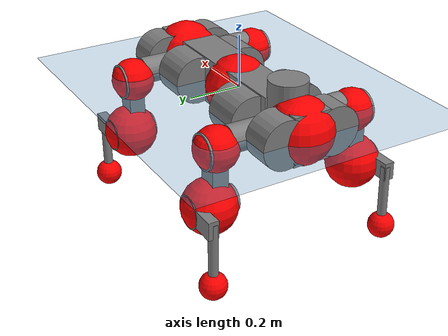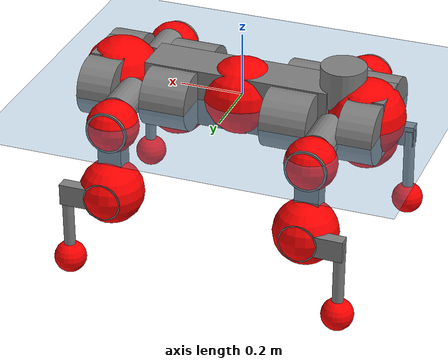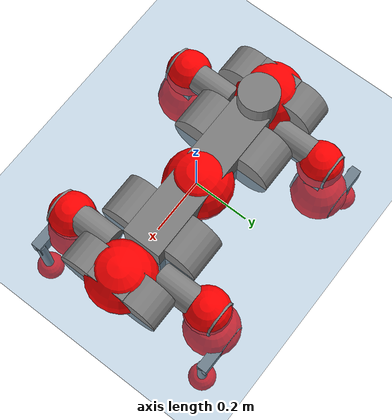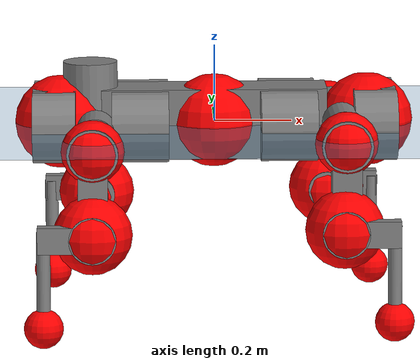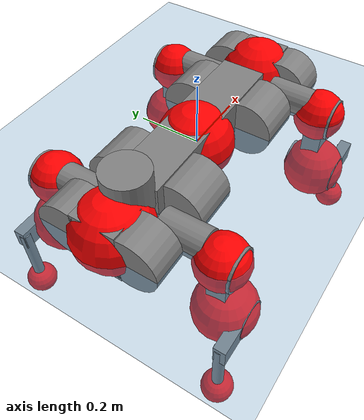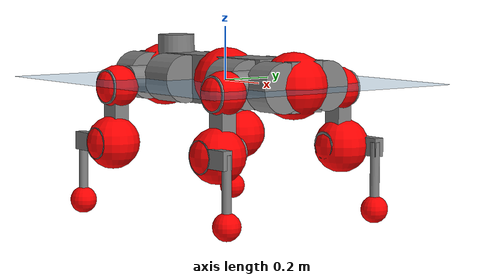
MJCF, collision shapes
<mujoco model="anymal_c">
  <compiler angle="radian" assetdir="assets" balanceinertia="true" inertiafromgeom="false"/>

  <option timestep="0.005" density="1.2" viscosity="2e-05"/>

  <size nkey="1"/>

  <visual>
    <quality shadowsize="8192"/>
    <map shadowclip="0.5"/>
  </visual>

  <default>
    <default class="/">
      <material specular="0" shininess="0.25"/>
      <geom contype="0" conaffinity="0" group="1" solref="-1000 -80"/>
      <site size="0.01 0.005 0.005" group="5"/>
      <general forcelimited="true" forcerange="-80 80" biastype="affine" gainprm="80" biasprm="0 -80 -2"/>
      <default class="anymal_c">
        <joint armature="0.01" damping="0.01" frictionloss="0.1"/>
        <default class="visual">
          <geom type="mesh" group="2"/>
          <default class="visual_zflip"/>
        </default>
        <default class="collision">
          <geom type="cylinder" group="3"/>
          <default class="foot">
            <geom size="0.03 0 0" type="sphere" condim="6" priority="1" friction="0.8 0.02 0.01" solimp="0.015 1 0.03"/>
          </default>
        </default>
      </default>
      <default class="reward_collision_sphere">
        <geom group="5" rgba="1 0 0 1"/>
      </default>
    </default>
  </default>

  <asset>
    <texture type="skybox" colorspace="auto" name="//unnamed_texture_0" builtin="gradient" rgb1="0.95 0.95 0.95" rgb2="0.95 0.95 0.95" width="100" height="600"/>
    <texture type="2d" colorspace="auto" name="texplane" builtin="checker" rgb1="0.345 0.575 0.748" rgb2="0.345 0.575 0.748" markrgb="1 1 1" width="512" height="512"/>
    <texture type="2d" colorspace="linear" name="base" file="base.png"/>
    <texture type="2d" colorspace="linear" name="top_shell" file="top_shell.png"/>
    <texture type="2d" colorspace="linear" name="bottom_shell" file="bottom_shell.png"/>
    <texture type="2d" colorspace="linear" name="remote" file="remote.png"/>
    <texture type="2d" colorspace="linear" name="hatch" file="hatch.png"/>
    <texture type="2d" colorspace="linear" name="handle" file="handle.png"/>
    <texture type="2d" colorspace="linear" name="face" file="face.png"/>
    <texture type="2d" colorspace="linear" name="battery" file="battery.png"/>
    <texture type="2d" colorspace="linear" name="lidar_cage" file="lidar_cage.png"/>
    <texture type="2d" colorspace="linear" name="depth_camera" file="depth_camera.png"/>
    <texture type="2d" colorspace="linear" name="wide_angle_camera" file="wide_angle_camera.png"/>
    <texture type="2d" colorspace="linear" name="lidar" file="lidar.png"/>
    <texture type="2d" colorspace="linear" name="drive" file="drive.png"/>
    <texture type="2d" colorspace="linear" name="hip_l" file="hip_l.png"/>
    <texture type="2d" colorspace="linear" name="shank_l" file="shank_l.png"/>
    <texture type="2d" colorspace="linear" name="foot" file="foot.png"/>
    <texture type="2d" colorspace="linear" name="thigh" file="thigh.png"/>
    <texture type="2d" colorspace="linear" name="shank_r" file="shank_r.png"/>
    <texture type="2d" colorspace="linear" name="hip_r" file="hip_r.png"/>
    <material name="MatPlane" class="/" texture="texplane" texuniform="true" texrepeat="2 2" specular="0.9" shininess="0.5"/>
    <material name="black_plastic" class="/" rgba="0.007 0.007 0.007 1"/>
    <material name="green" class="/" rgba="0.052 0.178 0.033 1"/>
    <material name="red" class="/" rgba="0.178 0.006 0.005 1"/>
    <material name="yellow" class="/" rgba="0.178 0.119 0.006 1"/>
    <material name="lwl" class="/" rgba="0.8 0.8 0.8 1"/>
    <material name="base" class="/" texture="base"/>
    <material name="top_shell" class="/" texture="top_shell"/>
    <material name="bottom_shell" class="/" texture="bottom_shell"/>
    <material name="hip_l" class="/" texture="hip_l"/>
    <material name="thigh" class="/" texture="thigh"/>
    <material name="shank_l" class="/" texture="shank_l"/>
    <material name="foot" class="/" texture="foot"/>
    <material name="hip_r" class="/" texture="hip_r"/>
    <material name="shank" class="/" texture="shank_r"/>
    <material name="hatch" class="/" texture="hatch"/>
    <material name="remote" class="/" texture="remote"/>
    <material name="handle" class="/" texture="handle"/>
    <material name="face" class="/" texture="face"/>
    <material name="depth_camera" class="/" texture="depth_camera"/>
    <material name="wide_angle_camera" class="/" texture="wide_angle_camera"/>
    <material name="battery" class="/" texture="battery"/>
    <material name="lidar_cage" class="/" texture="lidar_cage"/>
    <material name="lidar" class="/" texture="lidar"/>
    <material name="drive" class="/" texture="drive"/>
    <mesh name="base_0" class="/" file="base_0.obj"/>
    <mesh name="base_1" class="/" file="base_1.obj"/>
    <mesh name="base_2" class="/" file="base_2.obj"/>
    <mesh name="base_3" class="/" file="base_3.obj"/>
    <mesh name="base_4" class="/" file="base_4.obj"/>
    <mesh name="base_5" class="/" file="base_5.obj"/>
    <mesh name="top_shell" class="/" file="top_shell.obj"/>
    <mesh name="bottom_shell" class="/" file="bottom_shell.obj"/>
    <mesh name="remote" class="/" file="remote.obj"/>
    <mesh name="handle" class="/" file="handle.obj"/>
    <mesh name="face" class="/" file="face.obj"/>
    <mesh name="wide_angle_camera" class="/" file="wide_angle_camera.obj"/>
    <mesh name="depth_camera" class="/" file="depth_camera.obj"/>
    <mesh name="battery" class="/" file="battery.obj"/>
    <mesh name="lidar_cage" class="/" file="lidar_cage.obj"/>
    <mesh name="lidar" class="/" file="lidar.obj"/>
    <mesh name="drive" class="/" file="drive.obj"/>
    <mesh name="hip_l" class="/" file="hip_l.obj"/>
    <mesh name="thigh" class="/" file="thigh.obj"/>
    <mesh name="shank_l" class="/" file="shank_l.obj"/>
    <mesh name="foot" class="/" file="foot.obj"/>
    <mesh name="hip_r" class="/" file="hip_r.obj"/>
    <mesh name="hatch" class="/" file="hatch.obj"/>
    <mesh name="shank_r" class="/" file="shank_r.obj"/>
  </asset>

  <worldbody>
    <geom name="floor" class="/" size="100 100 0.125" type="plane" group="0" material="MatPlane"/>
    <light name="toplight_shadow" class="/" pos="0 0 5" dir="0.0990148 0.0990148 -0.990148" type="directional" ambient="0.04 0.04 0.04" diffuse="0.55 0.55 0.55" specular="0.12 0.12 0.12"/>
    <light name="toplight_fill" class="/" pos="0 0 5" dir="0.0990148 0.0990148 -0.990148" type="directional" castshadow="false" ambient="0.04 0.04 0.04" diffuse="0.3 0.3 0.3" specular="0.08 0.08 0.08"/>
    <body name="trunk" childclass="anymal_c" pos="-0.00165617 0.00580523 0.00149227" quat="0.999996 8.70056e-05 -0.00279027 0.000898659">
      <inertial pos="0.00663288 0.0106849 0.0287057" quat="0.498883 0.514785 0.483549 0.502287" mass="20.1793" diaginertia="0.435014 3.70622 0.0453125"/>
      <joint name="//unnamed_joint_0" type="free" armature="0" damping="0" frictionloss="0"/>
      <geom name="//unnamed_geom_1" class="visual" material="green" mesh="base_0"/>
      <geom name="//unnamed_geom_2" class="visual" material="yellow" mesh="base_1"/>
      <geom name="//unnamed_geom_3" class="visual" material="red" mesh="base_2"/>
      <geom name="//unnamed_geom_4" class="visual" material="black_plastic" mesh="base_3"/>
      <geom name="//unnamed_geom_5" class="visual" material="lwl" mesh="base_4"/>
      <geom name="//unnamed_geom_6" class="visual" material="base" mesh="base_5"/>
      <geom name="trunk_1" class="collision" size="0.291851 0.0704469 0.0905745" type="box"/>
      <geom name="trunk_2" class="collision" size="0.0905745 0.0729628" pos="0.191626 0.0987219 0" quat="0.707107 0 0.707107 0"/>
      <geom name="trunk_3" class="collision" size="0.0905745 0.0729628" pos="-0.191626 0.0987219 0" quat="0.707107 0 0.707107 0"/>
      <geom name="trunk_4" class="collision" size="0.0905745 0.0729628" pos="0.191626 -0.0987219 0" quat="0.707107 0 0.707107 0"/>
      <geom name="trunk_5" class="collision" size="0.0905745 0.0729628" pos="-0.191626 -0.0987219 0" quat="0.707107 0 0.707107 0"/>
      <geom name="//unnamed_geom_12" class="visual" material="top_shell" mesh="top_shell"/>
      <geom name="//unnamed_geom_13" class="visual" material="bottom_shell" mesh="bottom_shell"/>
      <geom name="//unnamed_geom_14" class="visual" material="remote" mesh="remote"/>
      <geom name="//unnamed_geom_15" class="visual" material="handle" mesh="handle"/>
      <geom name="//unnamed_geom_16" class="visual" pos="0.365191 0 0" quat="1 0 0 0" material="face" mesh="face"/>
      <geom name="trunk_6" class="collision" size="0.0553511 0.0704469 0.0905745" pos="0.413648 0 0" type="box"/>
      <geom name="//unnamed_geom_18" class="collision" size="0.0905745 0.0553511" pos="0.413648 0.0987219 0" quat="0.707107 0 0.707107 0"/>
      <geom name="//unnamed_geom_19" class="collision" size="0.0905745 0.0553511" pos="0.413648 -0.0987219 0" quat="0.707107 0 0.707107 0"/>
      <geom name="//unnamed_geom_20" class="visual" pos="0.406726 0 -0.0200871" quat="0.965926 0 0.258819 0" material="depth_camera" mesh="depth_camera"/>
      <geom name="//unnamed_geom_21" class="visual" pos="0.451973 0 0.0108951" material="wide_angle_camera" mesh="wide_angle_camera"/>
      <geom name="//unnamed_geom_22" class="visual_zflip" pos="-0.365191 0 0" quat="0 0 0 1" material="face" mesh="face"/>
      <geom name="trunk_7" class="collision" size="0.0553511 0.0704469 0.0905745" pos="-0.413648 0 0" quat="0 0 0 1" type="box"/>
      <geom name="//unnamed_geom_24" class="collision" size="0.0905745 0.0553511" pos="-0.413648 -0.0987219 0" quat="0 -0.707107 0 0.707107"/>
      <geom name="//unnamed_geom_25" class="collision" size="0.0905745 0.0553511" pos="-0.413648 0.0987219 0" quat="0 -0.707107 0 0.707107"/>
      <geom name="//unnamed_geom_26" class="visual" pos="-0.406726 0 -0.0200871" quat="0 -0.258819 0 0.965926" material="depth_camera" mesh="depth_camera"/>
      <geom name="//unnamed_geom_27" class="visual_zflip" pos="-0.451973 0 0.0108951" quat="0 0 0 1" material="wide_angle_camera" mesh="wide_angle_camera"/>
      <geom name="//unnamed_geom_28" class="visual" material="battery" mesh="battery"/>
      <geom name="//unnamed_geom_29" class="visual" pos="0 0.114771 0.0223072" quat="0.683013 -0.183013 0.183013 0.683013" material="depth_camera" mesh="depth_camera"/>
      <geom name="//unnamed_geom_30" class="visual" pos="0 -0.114771 0.0223072" quat="0.683013 0.183013 0.183013 -0.683013" material="depth_camera" mesh="depth_camera"/>
      <geom name="//unnamed_geom_31" class="visual" pos="-0.320698 0 0.0534932" quat="1 0 0 0" material="lidar_cage" mesh="lidar_cage"/>
      <geom name="trunk_8" class="collision" size="0.0704469 0.060383" pos="-0.320698 0 0.0971611"/>
      <geom name="//unnamed_geom_33" class="visual" pos="-0.320698 0.000207938 0.103493" quat="0.707107 0 0 -0.707107" material="lidar" mesh="lidar"/>
      <geom name="//unnamed_geom_34" class="visual" pos="0.264224 0.14643 1.17735e-08" quat="0.258819 0.965926 0 0" material="drive" mesh="drive"/>
      <geom name="//unnamed_geom_35" class="visual" pos="0.264224 -0.14643 -1.17735e-08" quat="0.258819 -0.965926 0 0" material="drive" mesh="drive"/>
      <geom name="//unnamed_geom_36" class="visual" pos="-0.264224 0.14643 -1.17735e-08" quat="0 0 0.965926 -0.258819" material="drive" mesh="drive"/>
      <geom name="//unnamed_geom_37" class="visual" pos="-0.264224 -0.14643 1.17735e-08" quat="0 0 -0.965926 -0.258819" material="drive" mesh="drive"/>
      <geom name="//unnamed_geom_38" class="visual" pos="0.102201 0 0.0531293" quat="1 0 0 0" material="hatch" mesh="hatch"/>
      <geom name="//unnamed_geom_39" class="reward_collision_sphere" size="0.120766"/>
      <geom name="//unnamed_geom_40" class="reward_collision_sphere" size="0.120766" pos="0.396468 0 0"/>
      <geom name="//unnamed_geom_41" class="reward_collision_sphere" size="0.120766" pos="-0.396468 0 0"/>
      <site name="imu" pos="0.213026 0.020059 0.0419977" size="0.0100638"/>
      <camera name="track" pos="0 -2.82063 0" quat="0.707107 0.707107 0 0" mode="trackcom"/>
      <camera name="ego_camera" pos="0.396468 0 -0.0291119" quat="-0.5 -0.5 0.5 0.5"/>
      <body name="LF_HIP" pos="0.265895 0.147189 -0.000626905" quat="0.259302 0.965796 0.000257533 -0.000919898">
        <inertial pos="0.0498022 -0.0135966 -0.00471521" quat="-0.0851522 0.740089 -0.117586 0.656651" mass="2.89113" diaginertia="0.00304182 0.0285464 0.000656307"/>
        <joint name="LF_HAA" pos="0 0 0" axis="0.999958 -0.00833976 -0.00376222" range="-0.637203 0.480452" armature="0.00973519" damping="0.0208116" frictionloss="0.0931167"/>
        <geom name="//unnamed_geom_42" class="visual" pos="0 0.000692579 -0.000113756" quat="0.258819 -0.965926 0 0" material="hip_l" mesh="hip_l"/>
        <geom name="//unnamed_geom_43" class="visual" pos="0.0527743 -0.0706735 -0.0357551" quat="0.183013 -0.683013 0.683013 0.183013" material="drive" mesh="drive"/>
        <geom name="//unnamed_geom_44" class="collision" size="0.0503192 0.0704469" pos="0.0527743 -0.0168671 -0.00502545" quat="-0.353553 -0.612372 0.612372 -0.353553"/>
        <body name="LF_THIGH" pos="0.0450037 -0.1066 -0.0313589" quat="0.185372 -0.685324 0.681132 0.178964">
          <inertial pos="0.025777 -0.0110863 -0.179168" quat="0.993421 0.000140962 -0.0872327 0.0742022" mass="3.02007" diaginertia="0.0181455 0.147302 0.000875365"/>
          <joint name="LF_HFE" pos="0 0 0" axis="0.999533 0.0295694 0.00772812" range="-3.02004 3.33395" armature="0.00465383" damping="0.0146779" frictionloss="0.123168"/>
          <geom name="//unnamed_geom_45" class="visual" pos="-0.0105305 -1.65936e-05 0" quat="0.707107 0 0 -0.707107" material="thigh" mesh="thigh"/>
          <geom name="//unnamed_geom_46" class="collision" size="0.0654149 0.0402554" pos="0.0352416 0 0" quat="0.5 0.5 -0.5 -0.5"/>
          <geom name="//unnamed_geom_47" class="collision" size="0.0377394 0.0301915 0.142216" pos="0.0264312 0 -0.102848" quat="0.707107 0 0 -0.707107" type="box"/>
          <geom name="//unnamed_geom_48" class="visual" pos="0.0883683 0 -0.207423" quat="1 0 0 0" material="drive" mesh="drive"/>
          <geom name="//unnamed_geom_49" class="collision" size="0.0503192 0.0704469" pos="0.0266955 0 -0.207423" quat="0.707107 0 0.707107 0"/>
          <geom name="//unnamed_geom_50" class="reward_collision_sphere" size="0.0805107" pos="0.022026 0 0"/>
          <body name="LF_SHANK" pos="0.0880977 -0.000660157 -0.211745" quat="1 0.000362686 -0.00080059 0.000310147">
            <inertial pos="0.0137307 -0.0810665 -0.0511119" quat="0.993878 -0.109008 -0.00285196 -0.0177453" mass="0.624548" diaginertia="0.00574531 0.0483468 0.000240027"/>
            <joint name="LF_KFE" pos="0 0 0" axis="0.999948 0.00524977 -0.00870067" range="-3.36451 2.99093" armature="0.0124847" damping="0.049286" frictionloss="0.091954"/>
            <geom name="//unnamed_geom_51" class="visual" pos="-0.00343376 -0.018309 0" quat="0.707107 0 0 -0.707107" material="shank_l" mesh="shank_l"/>
            <geom name="LF_kfe_act" class="collision" size="0.060383 0.0201277" pos="0.0176208 0 0" quat="0.5 0.5 -0.5 -0.5"/>
            <geom name="//unnamed_geom_53" class="collision" size="0.0578661 0.0339655 0.0191213" pos="0.0176208 -0.0810916 0" quat="0.5 0.5 -0.5 -0.5" type="box"/>
            <geom name="//unnamed_geom_54" class="visual" pos="0.0114984 -0.129937 -0.245974" quat="0.382683 0 0 -0.92388" material="foot" mesh="foot"/>
            <geom name="LF_calf" class="collision" size="0.0176117 0.142154" pos="0.0114976 -0.124037 -0.122987" quat="0.707107 0 0 -0.707107"/>
            <geom name="LF_foot" class="foot" size="0.0350943" pos="0.0114976 -0.124037 -0.229599" quat="0.707107 0 0 -0.707107"/>
            <geom name="//unnamed_geom_57" class="reward_collision_sphere" size="0.100638" pos="-0.044052 0 0"/>
            <geom name="//unnamed_geom_58" class="reward_collision_sphere" size="0.0503192" pos="0.0114976 -0.124037 -0.229599"/>
            <site name="LF_foot" class="foot" pos="0.0114976 -0.124037 -0.229599" quat="0.707107 0 0 -0.707107" size="0.0100638"/>
          </body>
        </body>
      </body>
      <body name="RF_HIP" pos="0.275247 -0.143226 0.0124648" quat="0.258787 -0.965934 -7.41195e-05 5.4389e-05">
        <inertial pos="0.0493037 0.019141 -0.00294888" quat="0.12061 0.704935 0.150162 0.682621" mass="2.97923" diaginertia="0.0034254 0.0274118 0.000668853"/>
        <joint name="RF_HAA" pos="0 0 0" axis="0.999751 0.00624276 -0.0214414" stiffness="0.0566672" range="-0.467337 0.552005" armature="0.0114828" damping="0.0278865" frictionloss="0.0948987"/>
        <geom name="//unnamed_geom_59" class="visual" pos="0 -0.000692574 -0.000113755" quat="0.258819 0.965926 0 0" material="hip_r" mesh="hip_r"/>
        <geom name="//unnamed_geom_60" class="visual" pos="0.0527743 0.0706735 -0.0357551" quat="0.183013 0.683013 0.683013 -0.183013" material="drive" mesh="drive"/>
        <geom name="//unnamed_geom_61" class="collision" size="0.0503192 0.0704469" pos="0.0527743 0.0168671 -0.00502545" quat="-0.353553 0.612372 0.612372 0.353553"/>
        <body name="RF_THIGH" pos="0.0555179 0.0984931 -0.02171" quat="0.182954 0.682958 0.683153 -0.182752">
          <inertial pos="0.0233416 0.00552216 -0.188434" quat="0.992202 0.00285381 -0.0872457 0.0889685" mass="3.06889" diaginertia="0.0171553 0.165469 0.000848171"/>
          <joint name="RF_HFE" pos="0 0 0" axis="0.999982 -0.00477147 -0.00371957" range="-3.17585 3.10013" armature="0.0142003" damping="0" frictionloss="0.126875"/>
          <geom name="//unnamed_geom_62" class="visual" pos="-0.0105305 -1.65936e-05 0" quat="0.707107 0 0 -0.707107" material="thigh" mesh="thigh"/>
          <geom name="//unnamed_geom_63" class="collision" size="0.0654149 0.0402554" pos="0.0352416 0 0" quat="0.5 0.5 0.5 0.5"/>
          <geom name="//unnamed_geom_64" class="collision" size="0.0377394 0.0301915 0.142216" pos="0.0264312 0 -0.102848" quat="0.707107 0 0 0.707107" type="box"/>
          <geom name="//unnamed_geom_65" class="visual" pos="0.0883683 0 -0.207423" quat="1 0 0 0" material="drive" mesh="drive"/>
          <geom name="//unnamed_geom_66" class="collision" size="0.0503192 0.0704469" pos="0.0266955 0 -0.207423" quat="0.707107 0 0.707107 0"/>
          <geom name="//unnamed_geom_67" class="reward_collision_sphere" size="0.0805107" pos="0.022026 0 0"/>
          <body name="RF_SHANK" pos="0.0882151 -0.00578919 -0.21641" quat="1 -1.93448e-05 0.000171363 -8.97535e-06">
            <inertial pos="0.0100727 0.0807461 -0.0571601" quat="0.991726 0.123458 0.00691354 0.0344981" mass="0.517413" diaginertia="0.00479545 0.0409426 0.000209415"/>
            <joint name="RF_KFE" pos="0 0 0" axis="0.999982 -0.00126775 -0.00581345" range="-3.17524 3.12024" armature="0.00978022" damping="0.0582987" frictionloss="0.11176"/>
            <geom name="//unnamed_geom_68" class="visual" pos="-0.00343374 0.0183089 0" quat="0.707107 0 0 0.707107" material="shank" mesh="shank_r"/>
            <geom name="RF_kfe_act" class="collision" size="0.060383 0.0201277" pos="0.0176208 0 0" quat="0.5 0.5 0.5 0.5"/>
            <geom name="//unnamed_geom_70" class="collision" size="0.0578661 0.0339655 0.0191213" pos="0.0176208 0.0810916 0" quat="0.5 0.5 0.5 0.5" type="box"/>
            <geom name="//unnamed_geom_71" class="visual" pos="0.0114967 0.129937 -0.245974" quat="0.382683 0 0 0.92388" material="foot" mesh="foot"/>
            <geom name="RF_calf" class="collision" size="0.0176117 0.142154" pos="0.0114976 0.124037 -0.122987" quat="0.707107 0 0 0.707107"/>
            <geom name="RF_foot" class="foot" size="0.0425297" pos="0.0114976 0.124037 -0.229599" quat="0.707107 0 0 0.707107"/>
            <geom name="//unnamed_geom_74" class="reward_collision_sphere" size="0.100638" pos="-0.044052 0 0"/>
            <geom name="//unnamed_geom_75" class="reward_collision_sphere" size="0.0503192" pos="0.0114976 0.124037 -0.229599"/>
            <site name="RF_foot" class="foot" pos="0.0114976 0.124037 -0.229599" quat="0.707107 0 0 0.707107" size="0.0100638"/>
          </body>
        </body>
      </body>
      <body name="LH_HIP" pos="-0.26255 0.142967 -0.00691113" quat="-0.00100684 4.63132e-05 0.965976 -0.25863">
        <inertial pos="0.0500326 0.021725 -0.0111517" quat="0.13535 0.679505 0.125657 0.710045" mass="3.33797" diaginertia="0.0032066 0.0296424 0.000653136"/>
        <joint name="LH_HAA" pos="0 0 0" axis="0.999901 -0.00542346 -0.0130081" range="-0.655308 0.760936" armature="0.0101914" damping="0" frictionloss="0.0648375"/>
        <geom name="//unnamed_geom_76" class="visual" pos="0 -0.000692574 -0.000113755" quat="-0.258819 -0.965926 0 0" material="hip_r" mesh="hip_r"/>
        <geom name="//unnamed_geom_77" class="visual" pos="0.0527743 0.0706735 -0.0357551" quat="0.183013 0.683013 0.683013 -0.183013" material="drive" mesh="drive"/>
        <geom name="//unnamed_geom_78" class="collision" size="0.0503192 0.0704469" pos="0.0527743 0.0168671 -0.00502545" quat="-0.353553 0.612372 0.612372 0.353553"/>
        <body name="LH_THIGH" pos="0.0510558 0.106203 -0.0312604" quat="0.187713 0.682067 0.682476 -0.18378">
          <inertial pos="0.0290172 -0.0118305 -0.180701" quat="0.991235 0.0237193 -0.0731972 0.107388" mass="3.552" diaginertia="0.0169667 0.157495 0.00076093"/>
          <joint name="LH_HFE" pos="0 0 0" axis="0.99846 0.0307776 -0.0461568" range="-3.16168 3.10207" armature="0.00717273" damping="0" frictionloss="0.12334"/>
          <geom name="//unnamed_geom_79" class="visual" pos="-0.0105305 -1.65936e-05 0" quat="0.707107 0 0 -0.707107" material="thigh" mesh="thigh"/>
          <geom name="//unnamed_geom_80" class="collision" size="0.0654149 0.0402554" pos="0.0352416 0 0" quat="0.5 0.5 -0.5 -0.5"/>
          <geom name="//unnamed_geom_81" class="collision" size="0.0377394 0.0301915 0.142216" pos="0.0264312 0 -0.102848" quat="0.707107 0 0 -0.707107" type="box"/>
          <geom name="//unnamed_geom_82" class="visual" pos="0.0883683 0 -0.207423" quat="1 0 0 0" material="drive" mesh="drive"/>
          <geom name="//unnamed_geom_83" class="collision" size="0.0503192 0.0704469" pos="0.0266955 0 -0.207423" quat="0.707107 0 0.707107 0"/>
          <geom name="//unnamed_geom_84" class="reward_collision_sphere" size="0.0805107" pos="0.022026 0 0"/>
          <body name="LH_SHANK" pos="0.0915209 -0.00103069 -0.21389" quat="0.999998 -0.000747089 0.00112073 -0.00165785">
            <inertial pos="0.00606567 0.078431 -0.0602334" quat="0.993289 0.114271 0.000613313 0.0178672" mass="0.613774" diaginertia="0.00585935 0.0561286 0.000250604"/>
            <joint name="LH_KFE" pos="0 0 0" axis="0.999901 -0.0127604 -0.00592084" range="-3.35562 3.15892" armature="0.00445862" damping="0" frictionloss="0.128202"/>
            <geom name="//unnamed_geom_85" class="visual" pos="-0.00343374 0.0183089 0" quat="-0.707107 0 0 -0.707107" material="shank" mesh="shank_r"/>
            <geom name="LH_kfe_act" class="collision" size="0.060383 0.0201277" pos="0.0176208 0 0" quat="0.5 0.5 -0.5 -0.5"/>
            <geom name="//unnamed_geom_87" class="collision" size="0.0578661 0.0339655 0.0191213" pos="0.0176208 0.0810916 0" quat="0.5 0.5 -0.5 -0.5" type="box"/>
            <geom name="//unnamed_geom_88" class="visual" pos="0.0114967 0.129937 -0.245974" quat="-0.382683 0 0 -0.92388" material="foot" mesh="foot"/>
            <geom name="LH_calf" class="collision" size="0.0176117 0.142154" pos="0.0114976 0.124037 -0.122987" quat="0.707107 0 0 -0.707107"/>
            <geom name="LH_foot" class="foot" size="0.0350561" pos="0.0114976 0.124037 -0.229599" quat="0.707107 0 0 -0.707107"/>
            <geom name="//unnamed_geom_91" class="reward_collision_sphere" size="0.100638" pos="-0.044052 0 0"/>
            <geom name="//unnamed_geom_92" class="reward_collision_sphere" size="0.0503192" pos="0.0114976 0.124037 -0.229599"/>
            <site name="LH_foot" class="foot" pos="0.0114976 0.124037 -0.229599" quat="0.707107 0 0 -0.707107" size="0.0100638"/>
          </body>
        </body>
      </body>
      <body name="RH_HIP" pos="-0.253477 -0.148099 -0.00167005" quat="0.00329432 -0.00260715 -0.966955 -0.254912">
        <inertial pos="0.0515135 -0.0201451 -0.00711552" quat="-0.130514 0.704954 -0.133361 0.684267" mass="2.97345" diaginertia="0.00323532 0.0282238 0.000599852"/>
        <joint name="RH_HAA" pos="0 0 0" axis="0.999961 -0.00866406 0.00156564" range="-0.720439 0.37098" armature="0.00533916" damping="0.0234825" frictionloss="0.0748568"/>
        <geom name="//unnamed_geom_93" class="visual" pos="0 0.000692579 -0.000113756" quat="-0.258819 0.965926 0 0" material="hip_l" mesh="hip_l"/>
        <geom name="//unnamed_geom_94" class="visual" pos="0.0527743 -0.0706735 -0.0357551" quat="-0.183013 0.683013 -0.683013 -0.183013" material="drive" mesh="drive"/>
        <geom name="//unnamed_geom_95" class="collision" size="0.0503192 0.0704469" pos="0.0527743 -0.0168671 -0.00502545" quat="0.353553 0.612372 -0.612372 0.353553"/>
        <body name="RH_THIGH" pos="0.0588414 -0.109727 -0.0285884" quat="-0.182469 0.683772 -0.682625 -0.182164">
          <inertial pos="0.0287457 0.00693554 -0.180119" quat="0.993004 -0.00787641 -0.081745 0.0848477" mass="3.05971" diaginertia="0.0157448 0.168483 0.000909807"/>
          <joint name="RH_HFE" pos="0 0 0" axis="0.999992 0.00263439 -0.00299139" range="-3.10363 2.91335" armature="0.0153844" damping="0" frictionloss="0.0929292"/>
          <geom name="//unnamed_geom_96" class="visual" pos="-0.0105305 -1.65936e-05 0" quat="0.707107 0 0 -0.707107" material="thigh" mesh="thigh"/>
          <geom name="//unnamed_geom_97" class="collision" size="0.0654149 0.0402554" pos="0.0352416 0 0" quat="0.5 0.5 0.5 0.5"/>
          <geom name="//unnamed_geom_98" class="collision" size="0.0377394 0.0301915 0.142216" pos="0.0264312 0 -0.102848" quat="0.707107 0 0 0.707107" type="box"/>
          <geom name="//unnamed_geom_99" class="visual" pos="0.0883683 0 -0.207423" quat="1 0 0 0" material="drive" mesh="drive"/>
          <geom name="//unnamed_geom_100" class="collision" size="0.0503192 0.0704469" pos="0.0266955 0 -0.207423" quat="0.707107 0 0.707107 0"/>
          <geom name="//unnamed_geom_101" class="reward_collision_sphere" size="0.0805107" pos="0.022026 0 0"/>
          <body name="RH_SHANK" pos="0.0837144 6.61139e-05 -0.210692" quat="1 0.000179269 -0.000271882 -0.000389931">
            <inertial pos="0.00947842 -0.0853945 -0.0603038" quat="0.992943 -0.115798 -0.00124117 -0.0255797" mass="0.55761" diaginertia="0.00532742 0.049284 0.000225395"/>
            <joint name="RH_KFE" pos="0 0 0" axis="0.999379 0.0349072 0.00482748" range="-3.31705 3.06639" armature="0.0100245" damping="0" frictionloss="0.0785373"/>
            <geom name="//unnamed_geom_102" class="visual" pos="-0.00343376 -0.018309 0" quat="0.707107 0 0 -0.707107" material="shank_l" mesh="shank_l"/>
            <geom name="RH_kfe_act" class="collision" size="0.060383 0.0201277" pos="0.0176208 0 0" quat="0.5 0.5 0.5 0.5"/>
            <geom name="//unnamed_geom_104" class="collision" size="0.0578661 0.0339655 0.0191213" pos="0.0176208 -0.0810916 0" quat="0.5 0.5 0.5 0.5" type="box"/>
            <geom name="//unnamed_geom_105" class="visual" pos="0.0114984 -0.129937 -0.245974" quat="0.382683 0 0 -0.92388" material="foot" mesh="foot"/>
            <geom name="RH_calf" class="collision" size="0.0176117 0.142154" pos="0.0114976 -0.124037 -0.122987" quat="0.707107 0 0 0.707107"/>
            <geom name="RH_foot" class="foot" size="0.0171967" pos="0.0114976 -0.124037 -0.229599" quat="0.707107 0 0 0.707107"/>
            <geom name="//unnamed_geom_108" class="reward_collision_sphere" size="0.100638" pos="-0.044052 0 0"/>
            <geom name="//unnamed_geom_109" class="reward_collision_sphere" size="0.0503192" pos="0.0114976 -0.124037 -0.229599"/>
            <site name="RH_foot" class="foot" pos="0.0114976 -0.124037 -0.229599" quat="0.707107 0 0 0.707107" size="0.0100638"/>
          </body>
        </body>
      </body>
    </body>
  </worldbody>

  <contact>
    <pair class="/" geom1="floor" geom2="LF_foot" name="//unnamed_contact_0"/>
    <pair class="/" geom1="floor" geom2="RF_foot" name="//unnamed_contact_1"/>
    <pair class="/" geom1="floor" geom2="LH_foot" name="//unnamed_contact_2"/>
    <pair class="/" geom1="floor" geom2="RH_foot" name="//unnamed_contact_3"/>
  </contact>

  <actuator>
    <general name="LF_HAA" class="/" joint="LF_HAA" forcerange="-70.3472 70.3472" gainprm="77.4177" biasprm="0 -77.4177 -2.14651"/>
    <general name="LF_HFE" class="/" joint="LF_HFE" forcerange="-82.2842 82.2842" gainprm="77.4177" biasprm="0 -77.4177 -2.14651"/>
    <general name="LF_KFE" class="/" joint="LF_KFE" forcerange="-86.7203 86.7203" gainprm="77.4177" biasprm="0 -77.4177 -2.14651"/>
    <general name="RF_HAA" class="/" joint="RF_HAA" forcerange="-92.3895 92.3895" gainprm="77.4177" biasprm="0 -77.4177 -2.14651"/>
    <general name="RF_HFE" class="/" joint="RF_HFE" forcerange="-80.8172 80.8172" gainprm="77.4177" biasprm="0 -77.4177 -2.14651"/>
    <general name="RF_KFE" class="/" joint="RF_KFE" forcerange="-100.594 100.594" gainprm="77.4177" biasprm="0 -77.4177 -2.14651"/>
    <general name="LH_HAA" class="/" joint="LH_HAA" forcerange="-85.8473 85.8473" gainprm="77.4177" biasprm="0 -77.4177 -2.14651"/>
    <general name="LH_HFE" class="/" joint="LH_HFE" forcerange="-79.5525 79.5525" gainprm="77.4177" biasprm="0 -77.4177 -2.14651"/>
    <general name="LH_KFE" class="/" joint="LH_KFE" forcerange="-77.7359 77.7359" gainprm="77.4177" biasprm="0 -77.4177 -2.14651"/>
    <general name="RH_HAA" class="/" joint="RH_HAA" forcerange="-91.4527 91.4527" gainprm="77.4177" biasprm="0 -77.4177 -2.14651"/>
    <general name="RH_HFE" class="/" joint="RH_HFE" forcerange="-73.6835 73.6835" gainprm="77.4177" biasprm="0 -77.4177 -2.14651"/>
    <general name="RH_KFE" class="/" joint="RH_KFE" forcerange="-52.9207 52.9207" gainprm="77.4177" biasprm="0 -77.4177 -2.14651"/>
  </actuator>

  <sensor>
    <gyro site="imu" name="imu_angular_velocity"/>
    <velocimeter site="imu" name="imu_linear_velocity"/>
    <framelinvel objtype="site" objname="LF_foot" name="LF_foot_global_linear_velocity"/>
    <framelinvel objtype="site" objname="RF_foot" name="RF_foot_global_linear_velocity"/>
    <framelinvel objtype="site" objname="LH_foot" name="LH_foot_global_linear_velocity"/>
    <framelinvel objtype="site" objname="RH_foot" name="RH_foot_global_linear_velocity"/>
  </sensor>

  <keyframe>
    <key name="home" qpos="0 0 0.55 1 0 0 0 0 0.4 -0.8 0 -0.4 0.8 0 -0.4 0.8 0 0.4 -0.8"/>
  </keyframe>
</mujoco>
